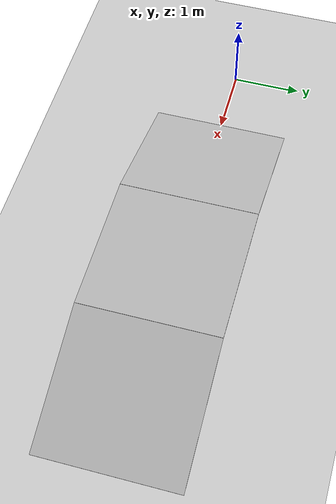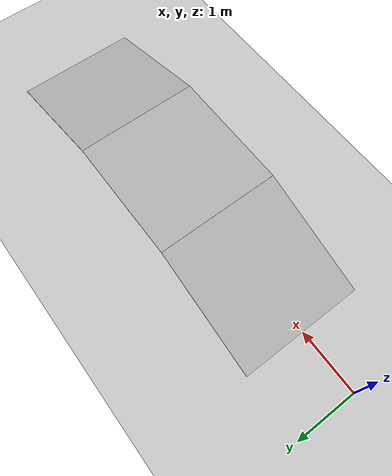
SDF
<?xml version="1.0" ?>
<sdf version="1.4">
  <world name="default">
    <include>
      <uri>model://ground_plane</uri>
    </include>
    <include>
      <uri>model://sun</uri>
    </include>
    <model name="slope_up">
      <static>true</static>
      <pose>1.95533648913 0 0.295520206661 0 -0.3 0</pose>
      <link name="link">
        <collision name="collision">
          <geometry>
            <box>
              <size>2.0 2 0.01</size>
            </box>
          </geometry>
        </collision>
        <visual name="visual">
          <geometry>
            <box>
              <size>2.0 2 0.01</size>
            </box>
          </geometry>
        </visual>
      </link>
    </model>
    <model name="platform">
      <static>true</static>
      <pose>3.91067297825 0 0.591040413323 0 0 0</pose>
      <link name="link">
        <collision name="collision">
          <geometry>
            <box>
              <size>2.0 2 0.01</size>
            </box>
          </geometry>
        </collision>
        <visual name="visual">
          <geometry>
            <box>
              <size>2.0 2 0.01</size>
            </box>
          </geometry>
        </visual>
      </link>
    </model>
    <model name="slope_down">
      <static>true</static>
      <pose>5.86600946738 0 0.295520206661 0 0.3 0</pose>
      <link name="link">
        <collision name="collision">
          <geometry>
            <box>
              <size>2.0 2 0.01</size>
            </box>
          </geometry>
        </collision>
        <visual name="visual">
          <geometry>
            <box>
              <size>2.0 2 0.01</size>
            </box>
          </geometry>
        </visual>
      </link>
    </model>
  </world>
</sdf>
